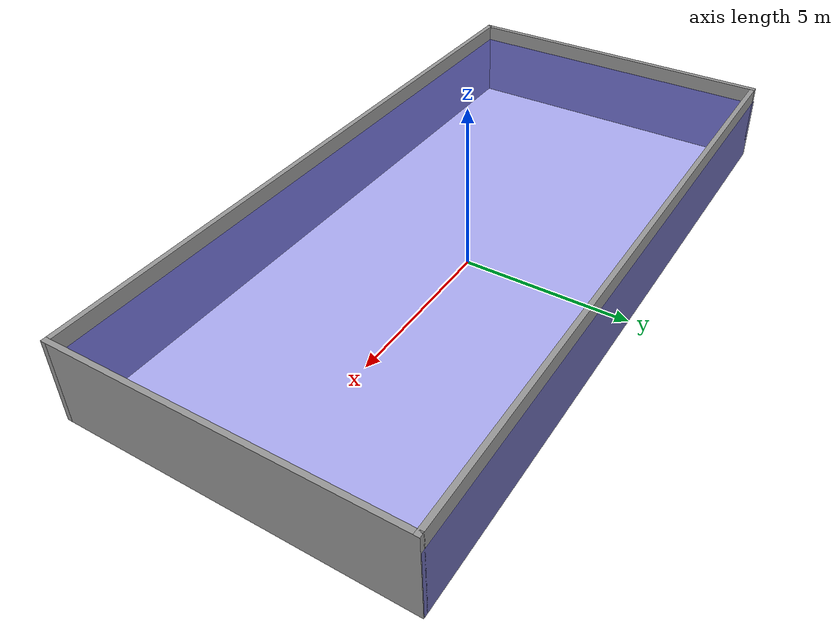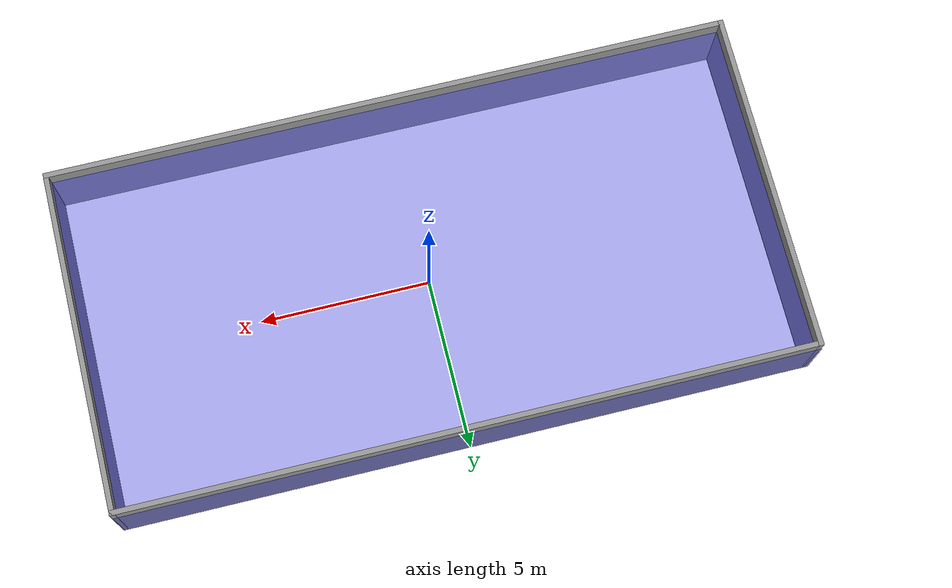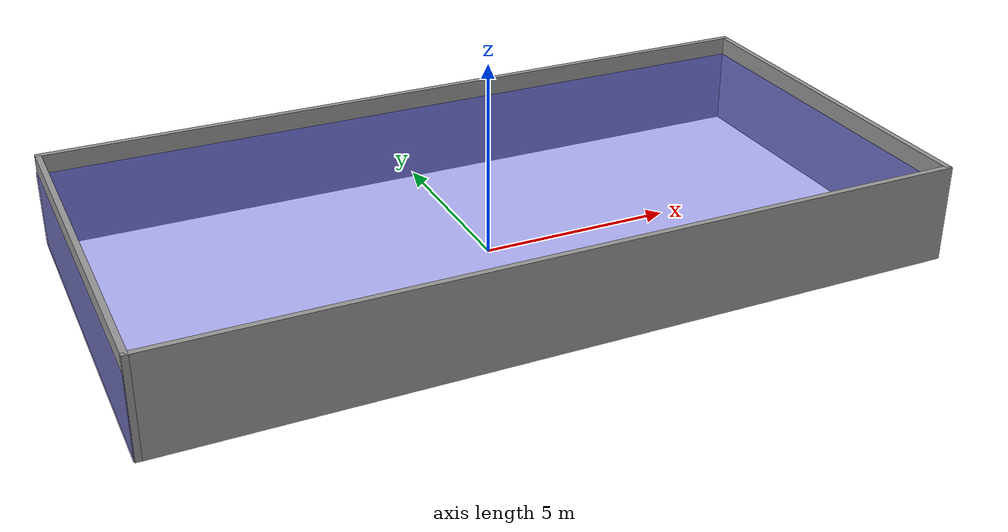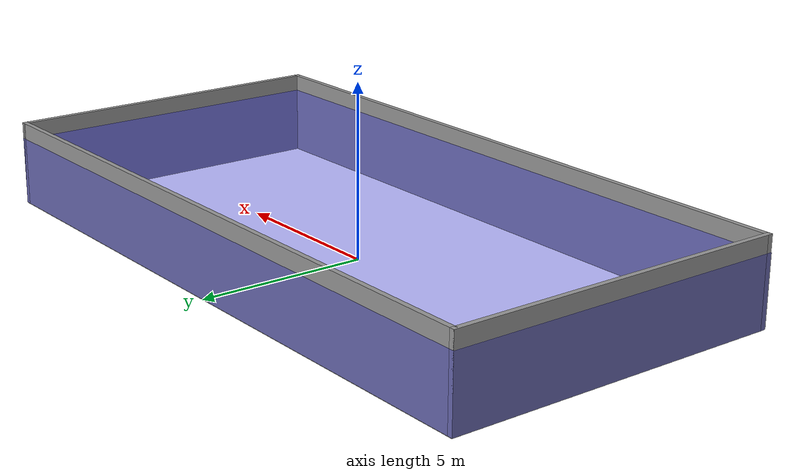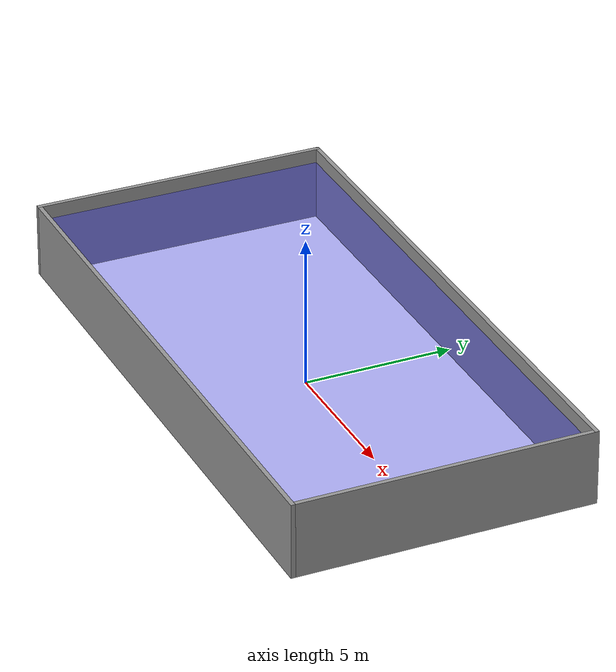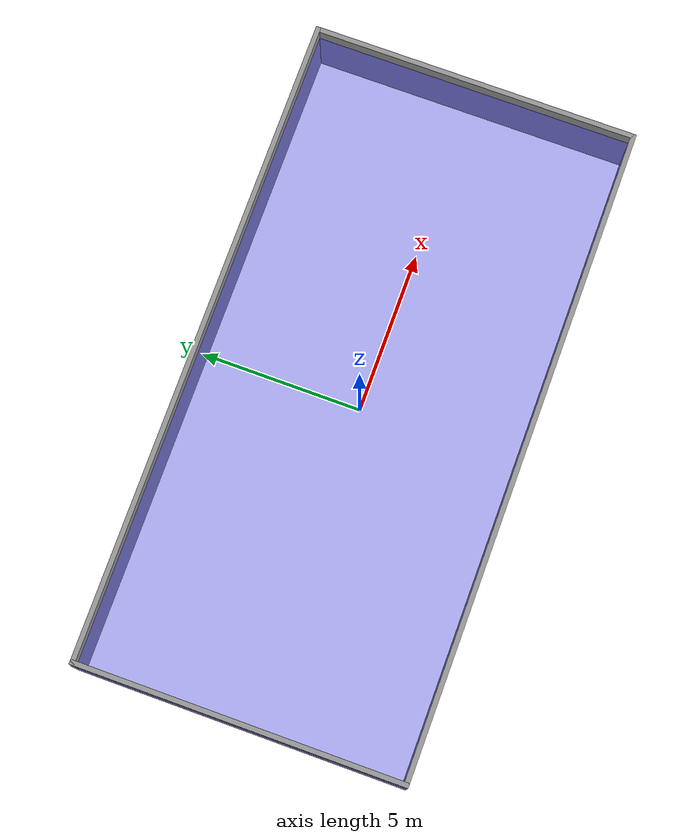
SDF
<sdf version="1.7">
 <world name="competition_world">
  <light name="sun" type="directional">
   <pose>0 0 10 0 -0 0</pose>
   <diffuse>0.8 0.8 0.8 1</diffuse>
   <specular>0.2 0.2 0.2 1</specular>
   <attenuation>
    <range>1000</range>
    <constant>0.9</constant>
    <linear>0.01</linear>
    <quadratic>0.001</quadratic>
   </attenuation>
   <direction>-0.5 0.1 -0.9</direction>
   <spot><inner_angle>0</inner_angle><outer_angle>0</outer_angle><falloff>0</falloff></spot>
  </light>
  <model name="competition_pool">
   <pose>0.023996 -0.013042 0 0 -0 0</pose>
   <link name="Wall_16">
    <collision name="Wall_16_Collision">
     <geometry><box><size>10 0.15 2.5</size></box></geometry>
     <pose>0 0 1.25 0 -0 0</pose>
    </collision>
    <visual name="Wall_16_Visual">
     <pose>0 0 1.25 0 -0 0</pose>
     <geometry><box><size>10 0.15 2.5</size></box></geometry>
     <material>
      <script><uri>file://media/materials/scripts/gazebo.material</uri><name>Gazebo/Grey</name></script>
      <ambient>1 1 1 1</ambient>
     </material>
     <meta><layer>0</layer></meta>
    </visual>
    <pose>-9.925 0 0 0 -0 1.5708</pose>
   </link>
   <link name="Wall_17">
    <collision name="Wall_17_Collision">
     <geometry><box><size>20 0.15 2.5</size></box></geometry>
     <pose>0 0 1.25 0 -0 0</pose>
    </collision>
    <visual name="Wall_17_Visual">
     <pose>0 0 1.25 0 -0 0</pose>
     <geometry><box><size>20 0.15 2.5</size></box></geometry>
     <material>
      <script><uri>file://media/materials/scripts/gazebo.material</uri><name>Gazebo/Grey</name></script>
      <ambient>1 1 1 1</ambient>
     </material>
     <meta><layer>0</layer></meta>
    </visual>
    <pose>-0 4.925 0 0 -0 0</pose>
   </link>
   <link name="Wall_18">
    <collision name="Wall_18_Collision">
     <geometry><box><size>10 0.15 2.5</size></box></geometry>
     <pose>0 0 1.25 0 -0 0</pose>
    </collision>
    <visual name="Wall_18_Visual">
     <pose>0 0 1.25 0 -0 0</pose>
     <geometry><box><size>10 0.15 2.5</size></box></geometry>
     <material>
      <script><uri>file://media/materials/scripts/gazebo.material</uri><name>Gazebo/Grey</name></script>
      <ambient>1 1 1 1</ambient>
     </material>
     <meta><layer>0</layer></meta>
    </visual>
    <pose>9.925 0 0 0 -0 -1.5708</pose>
   </link>
   <link name="Wall_19">
    <collision name="Wall_19_Collision">
     <geometry><box><size>20 0.15 2.5</size></box></geometry>
     <pose>0 0 1.25 0 -0 0</pose>
    </collision>
    <visual name="Wall_19_Visual">
     <pose>0 0 1.25 0 -0 0</pose>
     <geometry><box><size>20 0.15 2.5</size></box></geometry>
     <material>
      <script><uri>file://media/materials/scripts/gazebo.material</uri><name>Gazebo/Grey</name></script>
      <ambient>1 1 1 1</ambient>
     </material>
     <meta><layer>0</layer></meta>
    </visual>
    <pose>-0 -4.925 0 0 -0 3.14159</pose>
   </link>
   <static>1</static>
  </model>
  <model name="water">
   <static>1</static>
   <pose>0 0 1.02 -3.14159 -9.3e-05 1.5707</pose>
   <link name="link">
    <visual name="visual">
     <transparency>0.6</transparency>
     <cast_shadows>0</cast_shadows>
     <geometry><box><size>10 20 2</size></box></geometry>
     <material>
      <ambient>0.2 0.2 0.9 1</ambient>
      <diffuse>0.2 0.2 0.9 1</diffuse>
      <specular>0.1 0.1 0.3 1</specular>
      <emissive>0 0 0 1</emissive>
     </material>
    </visual>
   </link>
  </model>
  <physics type="ode">
   <max_step_size>0.001</max_step_size>
   <real_time_update_rate>1000</real_time_update_rate>
   <real_time_factor>1</real_time_factor>
  </physics>
  <gravity>0 0 0</gravity>
  <magnetic_field>6e-06 2.3e-05 -4.2e-05</magnetic_field>
  <atmosphere type="adiabatic"/>
  <scene><ambient>0.4 0.4 0.4 1</ambient><background>0.7 0.7 0.7 1</background><shadows>1</shadows></scene>
  <spherical_coordinates>
   <surface_model>EARTH_WGS84</surface_model>
   <latitude_deg>0</latitude_deg>
   <longitude_deg>0</longitude_deg>
   <elevation>0</elevation>
   <heading_deg>0</heading_deg>
  </spherical_coordinates>
 </world>
</sdf>
